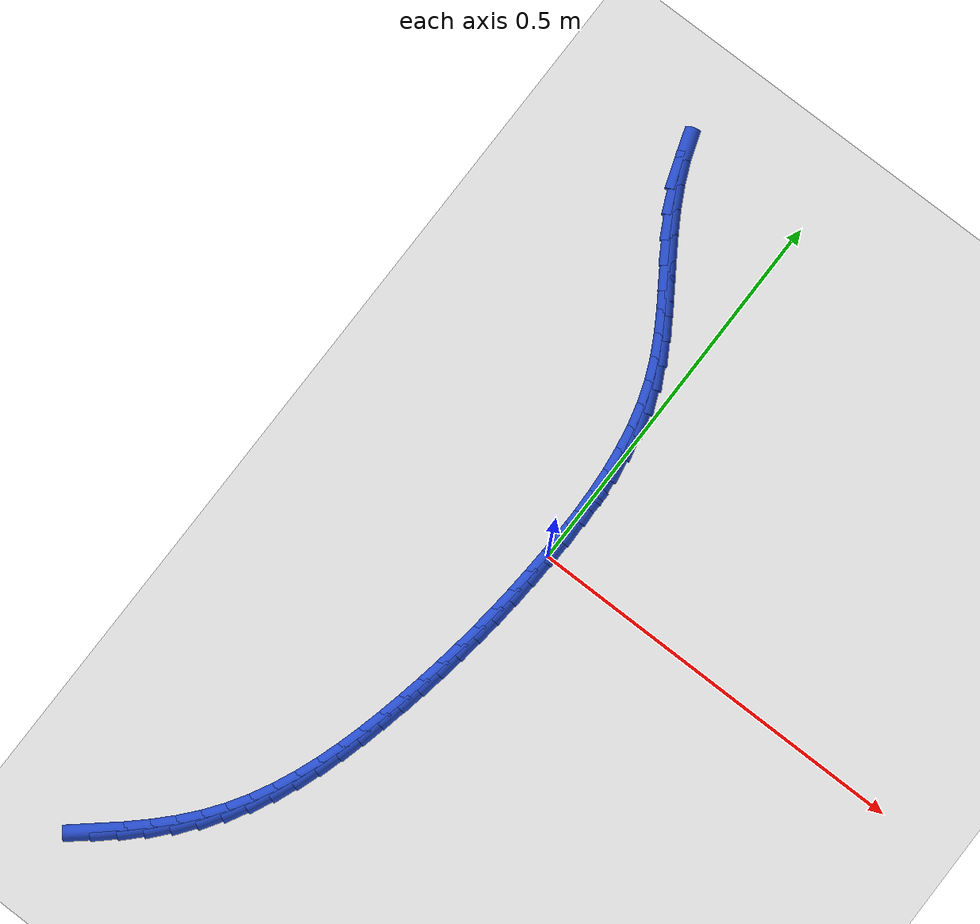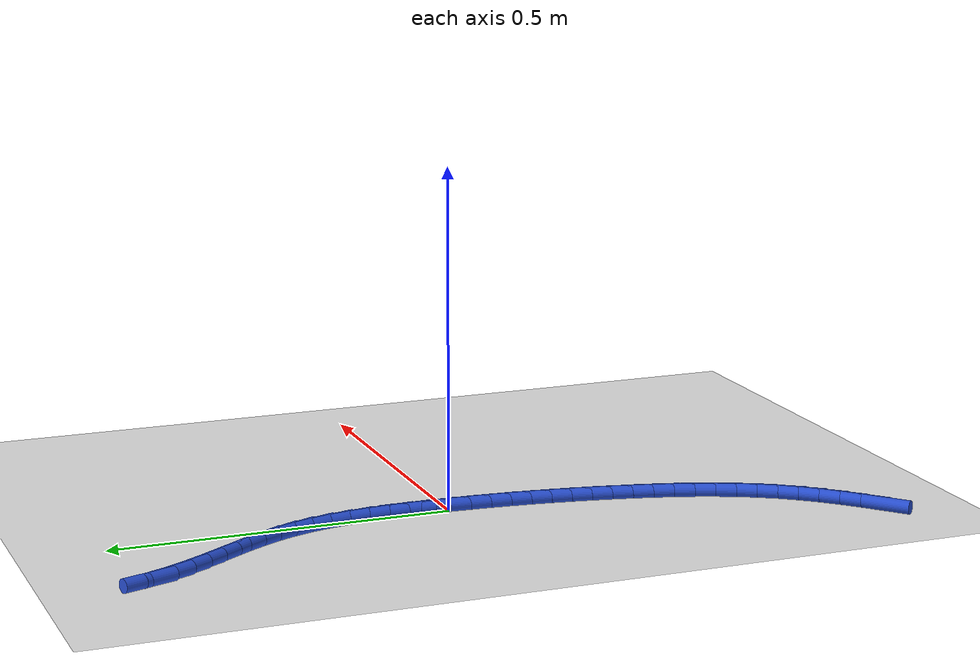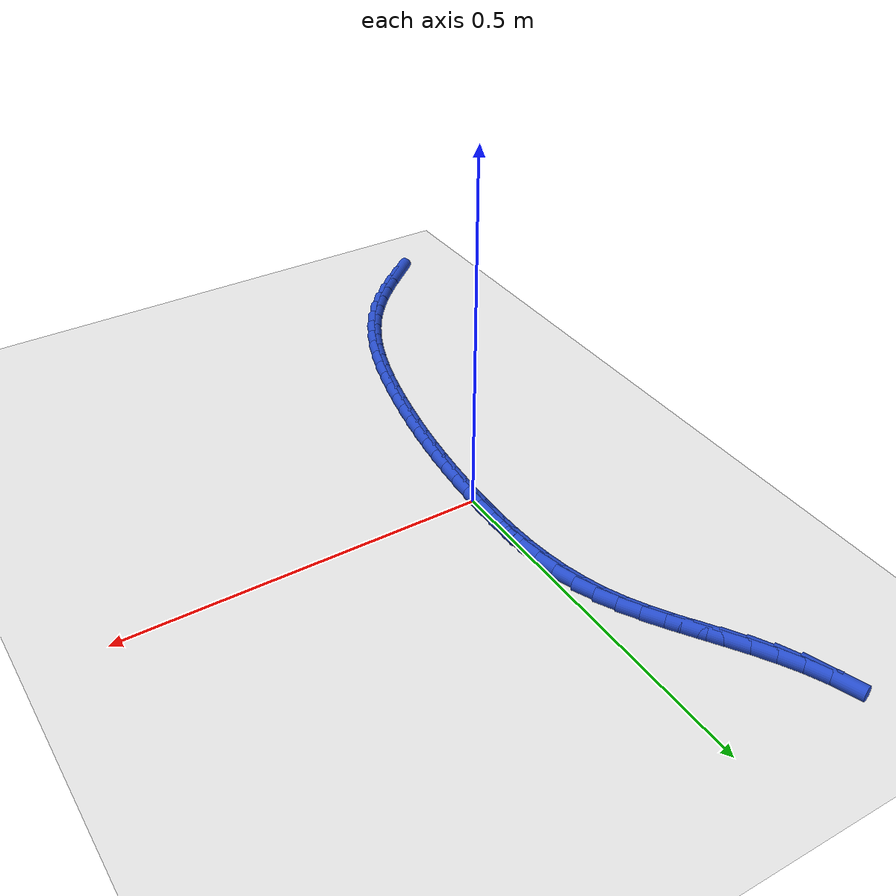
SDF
<sdf version="1.6">
 <world name="default">
  <model name="ground_plane">
   <static>1</static>
   <link name="link">
    <collision name="collision">
     <geometry><plane><normal>0 0 1</normal><size>100 100</size></plane></geometry>
     <surface><friction><ode><mu>100</mu><mu2>50</mu2></ode></friction></surface>
    </collision>
    <visual name="visual">
     <cast_shadows>0</cast_shadows>
     <geometry><plane><normal>0 0 1</normal><size>100 100</size></plane></geometry>
     <material>
      <script><uri>file://media/materials/scripts/gazebo.material</uri><name>Gazebo/WhiteGlow</name></script>
     </material>
    </visual>
   </link>
  </model>
  <model name="line">
   <link name="link_0">
    <pose>-1.3986208025063007e-17 6.938893903907228e-18 0.01 0 1.57 1.541147706651697</pose>
    <collision name="collision">
     <geometry><cylinder><radius>0.01</radius><length>0.08</length></cylinder></geometry>
    </collision>
    <visual name="visual">
     <material>
      <script><name>Gazebo/Blue</name><uri>file://media/materials/scripts/gazebo.material</uri></script>
     </material>
     <geometry><cylinder><radius>0.01</radius><length>0.08</length></cylinder></geometry>
    </visual>
   </link>
   <link name="link_1">
    <pose>0.0009209669351892451 0.031053622702425017 0.01 0 1.57 1.5679352440857037</pose>
    <collision name="collision">
     <geometry><cylinder><radius>0.01</radius><length>0.08</length></cylinder></geometry>
    </collision>
    <visual name="visual">
     <material>
      <script><name>Gazebo/Blue</name><uri>file://media/materials/scripts/gazebo.material</uri></script>
     </material>
     <geometry><cylinder><radius>0.01</radius><length>0.08</length></cylinder></geometry>
    </visual>
   </link>
   <link name="link_2">
    <pose>0.0010101660360313475 0.06223023188148483 0.01 0 1.57 -1.539586764811051</pose>
    <collision name="collision">
     <geometry><cylinder><radius>0.01</radius><length>0.08</length></cylinder></geometry>
    </collision>
    <visual name="visual">
     <material>
      <script><name>Gazebo/Blue</name><uri>file://media/materials/scripts/gazebo.material</uri></script>
     </material>
     <geometry><cylinder><radius>0.01</radius><length>0.08</length></cylinder></geometry>
    </visual>
   </link>
   <link name="link_3">
    <pose>3.843940078641244e-05 0.09335566440451884 0.01 0 1.57 -1.4977291121396294</pose>
    <collision name="collision">
     <geometry><cylinder><radius>0.01</radius><length>0.08</length></cylinder></geometry>
    </collision>
    <visual name="visual">
     <material>
      <script><name>Gazebo/Blue</name><uri>file://media/materials/scripts/gazebo.material</uri></script>
     </material>
     <geometry><cylinder><radius>0.01</radius><length>0.08</length></cylinder></geometry>
    </visual>
   </link>
   <link name="link_4">
    <pose>-0.0022233708722854415 0.12425575713886644 0.01 0 1.57 -1.4474590469639808</pose>
    <collision name="collision">
     <geometry><cylinder><radius>0.01</radius><length>0.08</length></cylinder></geometry>
    </collision>
    <visual name="visual">
     <material>
      <script><name>Gazebo/Blue</name><uri>file://media/materials/scripts/gazebo.material</uri></script>
     </material>
     <geometry><cylinder><radius>0.01</radius><length>0.08</length></cylinder></geometry>
    </visual>
   </link>
   <link name="link_5">
    <pose>-0.0060044226849240954 0.154756346951867 0.01 0 1.57 -1.3880916904587615</pose>
    <collision name="collision">
     <geometry><cylinder><radius>0.01</radius><length>0.08</length></cylinder></geometry>
    </collision>
    <visual name="visual">
     <material>
      <script><name>Gazebo/Blue</name><uri>file://media/materials/scripts/gazebo.material</uri></script>
     </material>
     <geometry><cylinder><radius>0.01</radius><length>0.08</length></cylinder></geometry>
    </visual>
   </link>
   <link name="link_6">
    <pose>-0.011533873938869432 0.18468327071085983 0.01 0 1.57 -1.3189837926779546</pose>
    <collision name="collision">
     <geometry><cylinder><radius>0.01</radius><length>0.08</length></cylinder></geometry>
    </collision>
    <visual name="visual">
     <material>
      <script><name>Gazebo/Blue</name><uri>file://media/materials/scripts/gazebo.material</uri></script>
     </material>
     <geometry><cylinder><radius>0.01</radius><length>0.08</length></cylinder></geometry>
    </visual>
   </link>
   <link name="link_7">
    <pose>-0.019040882535861336 0.21386236528318442 0.01 0 1.57 -1.2396893328802263</pose>
    <collision name="collision">
     <geometry><cylinder><radius>0.01</radius><length>0.08</length></cylinder></geometry>
    </collision>
    <visual name="visual">
     <material>
      <script><name>Gazebo/Blue</name><uri>file://media/materials/scripts/gazebo.material</uri></script>
     </material>
     <geometry><cylinder><radius>0.01</radius><length>0.08</length></cylinder></geometry>
    </visual>
   </link>
   <link name="link_8">
    <pose>-0.028754606377639682 0.24211946753618002 0.01 0 1.57 -1.1524537851948669</pose>
    <collision name="collision">
     <geometry><cylinder><radius>0.01</radius><length>0.08</length></cylinder></geometry>
    </collision>
    <visual name="visual">
     <material>
      <script><name>Gazebo/Blue</name><uri>file://media/materials/scripts/gazebo.material</uri></script>
     </material>
     <geometry><cylinder><radius>0.01</radius><length>0.08</length></cylinder></geometry>
    </visual>
   </link>
   <link name="link_9">
    <pose>-0.04084561939749068 0.2693155839849843 0.01 0 1.57 -1.0770742326302656</pose>
    <collision name="collision">
     <geometry><cylinder><radius>0.01</radius><length>0.08</length></cylinder></geometry>
    </collision>
    <visual name="visual">
     <material>
      <script><name>Gazebo/Blue</name><uri>file://media/materials/scripts/gazebo.material</uri></script>
     </material>
     <geometry><cylinder><radius>0.01</radius><length>0.08</length></cylinder></geometry>
    </visual>
   </link>
   <link name="link_10">
    <pose>-0.054994497774060146 0.29560588094488843 0.01 0 1.57 -1.0237760894129433</pose>
    <collision name="collision">
     <geometry><cylinder><radius>0.01</radius><length>0.08</length></cylinder></geometry>
    </collision>
    <visual name="visual">
     <material>
      <script><name>Gazebo/Blue</name><uri>file://media/materials/scripts/gazebo.material</uri></script>
     </material>
     <geometry><cylinder><radius>0.01</radius><length>0.08</length></cylinder></geometry>
    </visual>
   </link>
   <link name="link_11">
    <pose>-0.07063771452956852 0.32129206690414536 0.01 0 1.57 -0.9924273753710027</pose>
    <collision name="collision">
     <geometry><cylinder><radius>0.01</radius><length>0.08</length></cylinder></geometry>
    </collision>
    <visual name="visual">
     <material>
      <script><name>Gazebo/Blue</name><uri>file://media/materials/scripts/gazebo.material</uri></script>
     </material>
     <geometry><cylinder><radius>0.01</radius><length>0.08</length></cylinder></geometry>
    </visual>
   </link>
   <link name="link_12">
    <pose>-0.08720995744448957 0.3466769220831745 0.01 0 1.57 -0.9824732555606587</pose>
    <collision name="collision">
     <geometry><cylinder><radius>0.01</radius><length>0.08</length></cylinder></geometry>
    </collision>
    <visual name="visual">
     <material>
      <script><name>Gazebo/Blue</name><uri>file://media/materials/scripts/gazebo.material</uri></script>
     </material>
     <geometry><cylinder><radius>0.01</radius><length>0.08</length></cylinder></geometry>
    </visual>
   </link>
   <link name="link_13">
    <pose>-0.10414591429929701 0.37206322670239567 0.01 0 1.57 -0.9934500000199725</pose>
    <collision name="collision">
     <geometry><cylinder><radius>0.01</radius><length>0.08</length></cylinder></geometry>
    </collision>
    <visual name="visual">
     <material>
      <script><name>Gazebo/Blue</name><uri>file://media/materials/scripts/gazebo.material</uri></script>
     </material>
     <geometry><cylinder><radius>0.01</radius><length>0.08</length></cylinder></geometry>
    </visual>
   </link>
   <link name="link_14">
    <pose>-0.12088027287446454 0.3977537609822283 0.01 0 1.57 -1.0251112106891256</pose>
    <collision name="collision">
     <geometry><cylinder><radius>0.01</radius><length>0.08</length></cylinder></geometry>
    </collision>
    <visual name="visual">
     <material>
      <script><name>Gazebo/Blue</name><uri>file://media/materials/scripts/gazebo.material</uri></script>
     </material>
     <geometry><cylinder><radius>0.01</radius><length>0.08</length></cylinder></geometry>
    </visual>
   </link>
   <link name="link_15">
    <pose>-0.13684772095046593 0.4240513051430922 0.01 0 1.57 -1.0772789710385027</pose>
    <collision name="collision">
     <geometry><cylinder><radius>0.01</radius><length>0.08</length></cylinder></geometry>
    </collision>
    <visual name="visual">
     <material>
      <script><name>Gazebo/Blue</name><uri>file://media/materials/scripts/gazebo.material</uri></script>
     </material>
     <geometry><cylinder><radius>0.01</radius><length>0.08</length></cylinder></geometry>
    </visual>
   </link>
   <link name="link_16">
    <pose>-0.15148294630777498 0.4512586394054071 0.01 0 1.57 -1.149443536979852</pose>
    <collision name="collision">
     <geometry><cylinder><radius>0.01</radius><length>0.08</length></cylinder></geometry>
    </collision>
    <visual name="visual">
     <material>
      <script><name>Gazebo/Blue</name><uri>file://media/materials/scripts/gazebo.material</uri></script>
     </material>
     <geometry><cylinder><radius>0.01</radius><length>0.08</length></cylinder></geometry>
    </visual>
   </link>
   <link name="link_17">
    <pose>-0.1642206367268653 0.47967854398959253 0.01 0 1.57 -1.2376838080199517</pose>
    <collision name="collision">
     <geometry><cylinder><radius>0.01</radius><length>0.08</length></cylinder></geometry>
    </collision>
    <visual name="visual">
     <material>
      <script><name>Gazebo/Blue</name><uri>file://media/materials/scripts/gazebo.material</uri></script>
     </material>
     <geometry><cylinder><radius>0.01</radius><length>0.08</length></cylinder></geometry>
    </visual>
   </link>
   <link name="link_229">
    <pose>-0.22273775944133462 -0.5833098860614253 0.01 0 1.57 0.7113909025046586</pose>
    <collision name="collision">
     <geometry><cylinder><radius>0.01</radius><length>0.08</length></cylinder></geometry>
    </collision>
    <visual name="visual">
     <material>
      <script><name>Gazebo/Blue</name><uri>file://media/materials/scripts/gazebo.material</uri></script>
     </material>
     <geometry><cylinder><radius>0.01</radius><length>0.08</length></cylinder></geometry>
    </visual>
   </link>
   <link name="link_230">
    <pose>-0.19846097717211186 -0.5623845124119256 0.01 0 1.57 0.7514954336625231</pose>
    <collision name="collision">
     <geometry><cylinder><radius>0.01</radius><length>0.08</length></cylinder></geometry>
    </collision>
    <visual name="visual">
     <material>
      <script><name>Gazebo/Blue</name><uri>file://media/materials/scripts/gazebo.material</uri></script>
     </material>
     <geometry><cylinder><radius>0.01</radius><length>0.08</length></cylinder></geometry>
    </visual>
   </link>
   <link name="link_231">
    <pose>-0.17528360782651345 -0.5407277259613265 0.01 0 1.57 0.8027562226693465</pose>
    <collision name="collision">
     <geometry><cylinder><radius>0.01</radius><length>0.08</length></cylinder></geometry>
    </collision>
    <visual name="visual">
     <material>
      <script><name>Gazebo/Blue</name><uri>file://media/materials/scripts/gazebo.material</uri></script>
     </material>
     <geometry><cylinder><radius>0.01</radius><length>0.08</length></cylinder></geometry>
    </visual>
   </link>
   <link name="link_232">
    <pose>-0.15350681010790335 -0.5181814891019413 0.01 0 1.57 0.8658004799558571</pose>
    <collision name="collision">
     <geometry><cylinder><radius>0.01</radius><length>0.08</length></cylinder></geometry>
    </collision>
    <visual name="visual">
     <material>
      <script><name>Gazebo/Blue</name><uri>file://media/materials/scripts/gazebo.material</uri></script>
     </material>
     <geometry><cylinder><radius>0.01</radius><length>0.08</length></cylinder></geometry>
    </visual>
   </link>
   <link name="link_233">
    <pose>-0.13343174271964514 -0.49458776422608197 0.01 0 1.57 0.9407019838866351</pose>
    <collision name="collision">
     <geometry><cylinder><radius>0.01</radius><length>0.08</length></cylinder></geometry>
    </collision>
    <visual name="visual">
     <material>
      <script><name>Gazebo/Blue</name><uri>file://media/materials/scripts/gazebo.material</uri></script>
     </material>
     <geometry><cylinder><radius>0.01</radius><length>0.08</length></cylinder></geometry>
    </visual>
   </link>
   <link name="link_234">
    <pose>-0.11535086343014961 -0.46979427734542933 0.01 0 1.57 1.018560177864578</pose>
    <collision name="collision">
     <geometry><cylinder><radius>0.01</radius><length>0.08</length></cylinder></geometry>
    </collision>
    <visual name="visual">
     <material>
      <script><name>Gazebo/Blue</name><uri>file://media/materials/scripts/gazebo.material</uri></script>
     </material>
     <geometry><cylinder><radius>0.01</radius><length>0.08</length></cylinder></geometry>
    </visual>
   </link>
   <link name="link_235">
    <pose>-0.09933202946518108 -0.4437975329701415 0.01 0 1.57 1.0893992776455277</pose>
    <collision name="collision">
     <geometry><cylinder><radius>0.01</radius><length>0.08</length></cylinder></geometry>
    </collision>
    <visual name="visual">
     <material>
      <script><name>Gazebo/Blue</name><uri>file://media/materials/scripts/gazebo.material</uri></script>
     </material>
     <geometry><cylinder><radius>0.01</radius><length>0.08</length></cylinder></geometry>
    </visual>
   </link>
   <link name="link_236">
    <pose>-0.0852039926225808 -0.41675242234499815 0.01 0 1.57 1.1523818396238443</pose>
    <collision name="collision">
     <geometry><cylinder><radius>0.01</radius><length>0.08</length></cylinder></geometry>
    </collision>
    <visual name="visual">
     <material>
      <script><name>Gazebo/Blue</name><uri>file://media/materials/scripts/gazebo.material</uri></script>
     </material>
     <geometry><cylinder><radius>0.01</radius><length>0.08</length></cylinder></geometry>
    </visual>
   </link>
   <link name="link_237">
    <pose>-0.07278389922614449 -0.38882152434091877 0.01 0 1.57 1.2074528445991464</pose>
    <collision name="collision">
     <geometry><cylinder><radius>0.01</radius><length>0.08</length></cylinder></geometry>
    </collision>
    <visual name="visual">
     <material>
      <script><name>Gazebo/Blue</name><uri>file://media/materials/scripts/gazebo.material</uri></script>
     </material>
     <geometry><cylinder><radius>0.01</radius><length>0.08</length></cylinder></geometry>
    </visual>
   </link>
   <link name="link_238">
    <pose>-0.06188889559966796 -0.36016741782882283 0.01 0 1.57 1.2547705129758608</pose>
    <collision name="collision">
     <geometry><cylinder><radius>0.01</radius><length>0.08</length></cylinder></geometry>
    </collision>
    <visual name="visual">
     <material>
      <script><name>Gazebo/Blue</name><uri>file://media/materials/scripts/gazebo.material</uri></script>
     </material>
     <geometry><cylinder><radius>0.01</radius><length>0.08</length></cylinder></geometry>
    </visual>
   </link>
   <link name="link_239">
    <pose>-0.05233612806694695 -0.33095268167962993 0.01 0 1.57 1.2946025458857244</pose>
    <collision name="collision">
     <geometry><cylinder><radius>0.01</radius><length>0.08</length></cylinder></geometry>
    </collision>
    <visual name="visual">
     <material>
      <script><name>Gazebo/Blue</name><uri>file://media/materials/scripts/gazebo.material</uri></script>
     </material>
     <geometry><cylinder><radius>0.01</radius><length>0.08</length></cylinder></geometry>
    </visual>
   </link>
   <link name="link_240">
    <pose>-0.0439427429517775 -0.3013398947642605 0.01 0 1.57 1.327243681705399</pose>
    <collision name="collision">
     <geometry><cylinder><radius>0.01</radius><length>0.08</length></cylinder></geometry>
    </collision>
    <visual name="visual">
     <material>
      <script><name>Gazebo/Blue</name><uri>file://media/materials/scripts/gazebo.material</uri></script>
     </material>
     <geometry><cylinder><radius>0.01</radius><length>0.08</length></cylinder></geometry>
    </visual>
   </link>
   <link name="link_241">
    <pose>-0.03652588657795486 -0.271491635953632 0.01 0 1.57 1.3529703176460737</pose>
    <collision name="collision">
     <geometry><cylinder><radius>0.01</radius><length>0.08</length></cylinder></geometry>
    </collision>
    <visual name="visual">
     <material>
      <script><name>Gazebo/Blue</name><uri>file://media/materials/scripts/gazebo.material</uri></script>
     </material>
     <geometry><cylinder><radius>0.01</radius><length>0.08</length></cylinder></geometry>
    </visual>
   </link>
   <link name="link_242">
    <pose>-0.029903102046044787 -0.24157002382771733 0.01 0 1.57 1.3741161783445806</pose>
    <collision name="collision">
     <geometry><cylinder><radius>0.01</radius><length>0.08</length></cylinder></geometry>
    </collision>
    <visual name="visual">
     <material>
      <script><name>Gazebo/Blue</name><uri>file://media/materials/scripts/gazebo.material</uri></script>
     </material>
     <geometry><cylinder><radius>0.01</radius><length>0.08</length></cylinder></geometry>
    </visual>
   </link>
   <link name="link_243">
    <pose>-0.023946185311756227 -0.21167423956686957 0.01 0 1.57 1.3950088680643036</pose>
    <collision name="collision">
     <geometry><cylinder><radius>0.01</radius><length>0.08</length></cylinder></geometry>
    </collision>
    <visual name="visual">
     <material>
      <script><name>Gazebo/Blue</name><uri>file://media/materials/scripts/gazebo.material</uri></script>
     </material>
     <geometry><cylinder><radius>0.01</radius><length>0.08</length></cylinder></geometry>
    </visual>
   </link>
   <link name="link_244">
    <pose>-0.01863583619583795 -0.18177712766269322 0.01 0 1.57 1.4160660692296385</pose>
    <collision name="collision">
     <geometry><cylinder><radius>0.01</radius><length>0.08</length></cylinder></geometry>
    </collision>
    <visual name="visual">
     <material>
      <script><name>Gazebo/Blue</name><uri>file://media/materials/scripts/gazebo.material</uri></script>
     </material>
     <geometry><cylinder><radius>0.01</radius><length>0.08</length></cylinder></geometry>
    </visual>
   </link>
   <link name="link_245">
    <pose>-0.013965775028895228 -0.15183642783433593 0.01 0 1.57 1.43718104613384</pose>
    <collision name="collision">
     <geometry><cylinder><radius>0.01</radius><length>0.08</length></cylinder></geometry>
    </collision>
    <visual name="visual">
     <material>
      <script><name>Gazebo/Blue</name><uri>file://media/materials/scripts/gazebo.material</uri></script>
     </material>
     <geometry><cylinder><radius>0.01</radius><length>0.08</length></cylinder></geometry>
    </visual>
   </link>
   <link name="link_246">
    <pose>-0.009929722141533351 -0.12180987980094521 0.01 0 1.57 1.4582458708587138</pose>
    <collision name="collision">
     <geometry><cylinder><radius>0.01</radius><length>0.08</length></cylinder></geometry>
    </collision>
    <visual name="visual">
     <material>
      <script><name>Gazebo/Blue</name><uri>file://media/materials/scripts/gazebo.material</uri></script>
     </material>
     <geometry><cylinder><radius>0.01</radius><length>0.08</length></cylinder></geometry>
    </visual>
   </link>
   <link name="link_247">
    <pose>-0.00652139786435761 -0.0916552232816687 0.01 0 1.57 1.47915356056234</pose>
    <collision name="collision">
     <geometry><cylinder><radius>0.01</radius><length>0.08</length></cylinder></geometry>
    </collision>
    <visual name="visual">
     <material>
      <script><name>Gazebo/Blue</name><uri>file://media/materials/scripts/gazebo.material</uri></script>
     </material>
     <geometry><cylinder><radius>0.01</radius><length>0.08</length></cylinder></geometry>
    </visual>
   </link>
   <link name="link_248">
    <pose>-0.0037345225279732798 -0.06133019799565394 0.01 0 1.57 1.4998001716960236</pose>
    <collision name="collision">
     <geometry><cylinder><radius>0.01</radius><length>0.08</length></cylinder></geometry>
    </collision>
    <visual name="visual">
     <material>
      <script><name>Gazebo/Blue</name><uri>file://media/materials/scripts/gazebo.material</uri></script>
     </material>
     <geometry><cylinder><radius>0.01</radius><length>0.08</length></cylinder></geometry>
    </visual>
   </link>
   <link name="link_249">
    <pose>-0.0015628164629856549 -0.030792543662048536 0.01 0 1.57 1.5200867564259286</pose>
    <collision name="collision">
     <geometry><cylinder><radius>0.01</radius><length>0.08</length></cylinder></geometry>
    </collision>
    <visual name="visual">
     <material>
      <script><name>Gazebo/Blue</name><uri>file://media/materials/scripts/gazebo.material</uri></script>
     </material>
     <geometry><cylinder><radius>0.01</radius><length>0.08</length></cylinder></geometry>
    </visual>
   </link>
   <link name="link_250">
    <pose>-1.984089975648473e-17 -1.3183898417423734e-16 0.01 0 1.57 1.5399210979060753</pose>
    <collision name="collision">
     <geometry><cylinder><radius>0.01</radius><length>0.08</length></cylinder></geometry>
    </collision>
    <visual name="visual">
     <material>
      <script><name>Gazebo/Blue</name><uri>file://media/materials/scripts/gazebo.material</uri></script>
     </material>
     <geometry><cylinder><radius>0.01</radius><length>0.08</length></cylinder></geometry>
    </visual>
   </link>
   <link name="link_251">
    <pose>0.0009602065303783402 0.031089693271343737 0.01 0 1.57 1.5592191587073234</pose>
    <collision name="collision">
     <geometry><cylinder><radius>0.01</radius><length>0.08</length></cylinder></geometry>
    </collision>
    <visual name="visual">
     <material>
      <script><name>Gazebo/Blue</name><uri>file://media/materials/scripts/gazebo.material</uri></script>
     </material>
     <geometry><cylinder><radius>0.01</radius><length>0.08</length></cylinder></geometry>
    </visual>
   </link>
   <link name="link_252">
    <pose>0.00132408279754414 0.06251879643283544 0.01 0 1.57 1.5496205371969667</pose>
    <collision name="collision">
     <geometry><cylinder><radius>0.01</radius><length>0.08</length></cylinder></geometry>
    </collision>
    <visual name="visual">
     <material>
      <script><name>Gazebo/Blue</name><uri>file://media/materials/scripts/gazebo.material</uri></script>
     </material>
     <geometry><cylinder><radius>0.01</radius><length>0.08</length></cylinder></geometry>
    </visual>
   </link>
  </model>
 </world>
</sdf>
